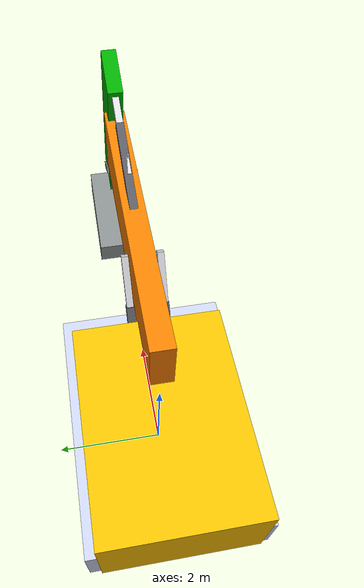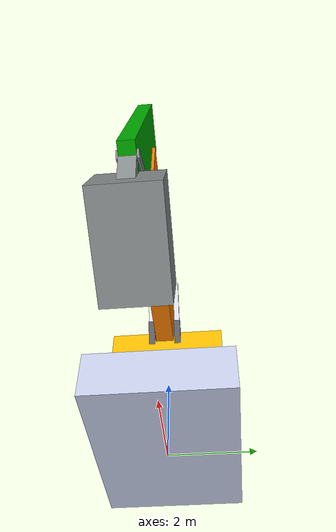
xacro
<?xml version="1.0" encoding="utf-8"?>
<robot name="excavator_box" xmlns:xacro="http://www.ros.org/wiki/xacro">

  <xacro:arg name="use_gazebo" default="false"/>
  <xacro:arg name="controllers_file" default=""/>

  <!-- Main-joint limits (same as the mesh model). -->
  <xacro:property name="swing_lower"  value="-6.2832"/>
  <xacro:property name="swing_upper"  value="6.2832"/>
  <xacro:property name="boom_lower"   value="-0.9"/>
  <xacro:property name="boom_upper"   value="0.35"/>
  <xacro:property name="stick_lower"  value="-0.8"/>
  <xacro:property name="stick_upper"  value="1.0"/>
  <xacro:property name="bucket_lower" value="-1.4"/>
  <xacro:property name="bucket_upper" value="1.2"/>

  <!-- Keep the same tool frame as the mesh model. -->
  <xacro:property name="bucket_tip_xyz" value="1.800 0 -0.060"/>

  <material name="excavator_yellow"><color rgba="1.0 0.75 0.0 1.0"/></material>
  <material name="excavator_orange"><color rgba="1.0 0.50 0.0 1.0"/></material>
  <material name="excavator_green"><color rgba="0.0 0.67 0.0 1.0"/></material>
  <material name="excavator_grey"><color rgba="0.53 0.55 0.55 1.0"/></material>
  <material name="excavator_blue"><color rgba="0.79 0.82 0.93 1.0"/></material>
  <material name="cylinder_body"><color rgba="0.35 0.35 0.38 1.0"/></material>
  <material name="cylinder_rod"><color rgba="0.85 0.85 0.88 1.0"/></material>

  <!-- A link with one Box visual and one Box collision. -->
  <xacro:macro name="box_link"
               params="name size xyz mass ixx iyy izz color com:='0 0 0'">
    <link name="${name}">
      <inertial>
        <origin xyz="${com}" rpy="0 0 0"/>
        <mass value="${mass}"/>
        <inertia ixx="${ixx}" ixy="0.0" ixz="0.0" iyy="${iyy}" iyz="0.0"
                 izz="${izz}"/>
      </inertial>
      <visual>
        <origin xyz="${xyz}" rpy="0 0 0"/>
        <geometry><box size="${size}"/></geometry>
        <material name="${color}"/>
      </visual>
      <collision>
        <origin xyz="${xyz}" rpy="0 0 0"/>
        <geometry><box size="${size}"/></geometry>
      </collision>
    </link>
  </xacro:macro>

  <!-- A decorative link (hydraulic cylinder, linkage, rocker): visual only. -->
  <xacro:macro name="box_visual_link"
               params="name size xyz mass ixx iyy izz color">
    <link name="${name}">
      <inertial>
        <origin xyz="0 0 0" rpy="0 0 0"/>
        <mass value="${mass}"/>
        <inertia ixx="${ixx}" ixy="0.0" ixz="0.0" iyy="${iyy}" iyz="0.0"
                 izz="${izz}"/>
      </inertial>
      <visual>
        <origin xyz="${xyz}" rpy="0 0 0"/>
        <geometry><box size="${size}"/></geometry>
        <material name="${color}"/>
      </visual>
    </link>
  </xacro:macro>

  <!-- Hydraulic cylinder: revolute body + prismatic rod. -->
  <xacro:macro name="box_hydraulic_cylinder"
               params="name parent body_xyz body_rpy body_size body_center
                       rod_xyz rod_size rod_center">
    <xacro:box_visual_link name="${name}_body"
      size="${body_size}" xyz="${body_center}" mass="1.0"
      ixx="0.02" iyy="0.02" izz="0.005" color="cylinder_body"/>
    <joint name="${name}_body_joint" type="revolute">
      <origin xyz="${body_xyz}" rpy="${body_rpy}"/>
      <parent link="${parent}"/>
      <child link="${name}_body"/>
      <axis xyz="0 1 0"/>
      <limit lower="-2.0" upper="2.0" effort="5000" velocity="4"/>
    </joint>

    <xacro:box_visual_link name="${name}_rod"
      size="${rod_size}" xyz="${rod_center}" mass="1.0"
      ixx="0.02" iyy="0.02" izz="0.005" color="cylinder_rod"/>
    <joint name="${name}_rod_joint" type="prismatic">
      <origin xyz="${rod_xyz}" rpy="0 0 0"/>
      <parent link="${name}_body"/>
      <child link="${name}_rod"/>
      <axis xyz="0 0 -1"/>
      <limit lower="-2.0" upper="2.0" effort="5000" velocity="4"/>
    </joint>
  </xacro:macro>

  <!-- ============================ links ============================ -->
  <link name="world"/>

  <!-- Bounding boxes of the original meshes. The centres match the mesh
       bounding-box centres, so the boxes occupy the same space. -->
  <xacro:box_link name="base_link"
    size="4.5963 3.3000 1.1166" xyz="-0.0010 0 0.1617"
    mass="10000" ixx="10833.3" iyy="10833.3" izz="20000.0"
    com="0 0 0.19446" color="excavator_blue"/>

  <joint name="world_to_base_link" type="fixed">
    <origin xyz="0 0 0.397" rpy="0 0 0"/>
    <parent link="world"/>
    <child link="base_link"/>
  </joint>

  <xacro:box_link name="swing_link"
    size="3.6042 2.6550 1.6468" xyz="-0.7170 0.0525 0.8234"
    mass="3000" ixx="2250" iyy="2250" izz="3375"
    color="excavator_yellow"/>

  <joint name="swing_joint" type="revolute">
    <origin xyz="0 0 0.72" rpy="0 0 0"/>
    <parent link="base_link"/>
    <child link="swing_link"/>
    <axis xyz="0 0 -1"/>
    <limit lower="${swing_lower}" upper="${swing_upper}" effort="5000"
           velocity="0.5"/>
    <dynamics damping="1.0" friction="40.0"/>
  </joint>

  <xacro:box_link name="boom_link"
    size="5.6803 0.4200 1.3741" xyz="2.6938 0 1.0406"
    mass="1440.8" ixx="321.25" iyy="3009.3" izz="2727.5"
    com="2.2911 0 1.2825" color="excavator_orange"/>

  <joint name="boom_joint" type="revolute">
    <origin xyz="-0.009 0 1.0372" rpy="0 0 0"/>
    <parent link="swing_link"/>
    <child link="boom_link"/>
    <axis xyz="0 1 0"/>
    <limit lower="${boom_lower}" upper="${boom_upper}" effort="5000"
           velocity="0.3"/>
    <dynamics damping="1.0" friction="80.0"/>
  </joint>

  <xacro:box_link name="stick_link"
    size="3.9877 0.3000 1.0195" xyz="1.0405 0 0.3506"
    mass="600.4" ixx="26.656" iyy="564.47" izz="545.68"
    com="0.9223 0 0.24134" color="excavator_green"/>

  <joint name="stick_joint" type="revolute">
    <origin xyz="5.4177 0 1.706" rpy="0 1.2726 0"/>
    <parent link="boom_link"/>
    <child link="stick_link"/>
    <axis xyz="0 1 0"/>
    <limit lower="${stick_lower}" upper="${stick_upper}" effort="5000"
           velocity="0.4"/>
    <dynamics damping="1.0" friction="80.0"/>
  </joint>

  <xacro:box_link name="bucket_link"
    size="1.9642 1.2000 1.1148" xyz="0.8179 0 0.4978"
    mass="359.5" ixx="94.627" iyy="138.37" izz="169.06"
    com="0.72017 0 0.569" color="excavator_grey"/>

  <joint name="bucket_joint" type="revolute">
    <origin xyz="2.9111 0 0.15097" rpy="0 1.4717 0"/>
    <parent link="stick_link"/>
    <child link="bucket_link"/>
    <axis xyz="0 1 0"/>
    <limit lower="${bucket_lower}" upper="${bucket_upper}" effort="5000"
           velocity="0.5"/>
    <dynamics damping="1.0" friction="80.0"/>
  </joint>

  <!-- Bucket linkage, visual only (same joint as the mesh model). -->
  <xacro:box_visual_link name="bucket_linkage"
    size="0.1679 0.3000 0.7960" xyz="0 0 -0.3140" mass="1.973"
    ixx="1.2029" iyy="1.0753" izz="0.1691" color="excavator_grey"/>
  <joint name="bucket_linkage_joint" type="revolute">
    <origin xyz="-0.10419 0 0.59088" rpy="0 0.53327 0"/>
    <parent link="bucket_link"/>
    <child link="bucket_linkage"/>
    <axis xyz="0 -1 0"/>
    <limit lower="-3.0" upper="3.0" effort="5000" velocity="1.0"/>
  </joint>

  <link name="bucket_tip"/>
  <joint name="bucket_tip_joint" type="fixed">
    <origin xyz="${bucket_tip_xyz}" rpy="0 0 0"/>
    <parent link="bucket_link"/>
    <child link="bucket_tip"/>
  </joint>

  <!-- ========================= hydraulic cylinders ================= -->
  <xacro:box_hydraulic_cylinder name="boom_cyl_l" parent="swing_link"
    body_xyz="0.461 0.31 0.44" body_rpy="0 0.55538 0"
    body_size="0.1500 0.1462 1.7031" body_center="0 0 0.7784"
    rod_xyz="0 0 0.95471"
    rod_size="0.1191 0.1200 1.6300" rod_center="0 0 0.8150"/>
  <xacro:box_hydraulic_cylinder name="boom_cyl_r" parent="swing_link"
    body_xyz="0.461 -0.31 0.44" body_rpy="0 0.5538 0"
    body_size="0.1500 0.1462 1.7031" body_center="0 0 0.7784"
    rod_xyz="0 0 0.95471"
    rod_size="0.1191 0.1200 1.6300" rod_center="0 0 0.8150"/>
  <xacro:box_hydraulic_cylinder name="stick_cyl" parent="boom_link"
    body_xyz="2.7108 0 1.6303" body_rpy="0 1.26 0"
    body_size="0.1600 0.1560 1.9580" body_center="0 0 0.9010"
    rod_xyz="0 0 0.7811"
    rod_size="0.1600 0.1300 1.9380" rod_center="0 0 0.9690"/>
  <xacro:box_hydraulic_cylinder name="bucket_cyl" parent="stick_link"
    body_xyz="0.40628 0 0.76931" body_rpy="-3.1416 1.4945 -3.1416"
    body_size="0.1500 0.1500 1.5350" body_center="0 0 0.6925"
    rod_xyz="0 0 1.0701"
    rod_size="0.1191 0.1200 1.5100" rod_center="0 0 0.7550"/>

  <!-- Stick rockers, visual only. -->
  <xacro:macro name="box_stick_rocker" params="name y">
    <xacro:box_visual_link name="${name}"
      size="0.1634 0.0400 0.7740" xyz="0 0 0.3050" mass="1.0"
      ixx="0.3" iyy="0.3" izz="0.05" color="excavator_grey"/>
    <joint name="${name}_joint" type="revolute">
      <origin xyz="2.4617 ${y} 0.17367" rpy="0 0.84777 0"/>
      <parent link="stick_link"/>
      <child link="${name}"/>
      <axis xyz="0 1 0"/>
      <limit lower="-3.0" upper="3.0" effort="5000" velocity="1.0"/>
    </joint>
  </xacro:macro>
  <xacro:box_stick_rocker name="stick_rocker_l" y="-0.17"/>
  <xacro:box_stick_rocker name="stick_rocker_r" y="0.17"/>

  <!-- ============================ Gazebo =========================== -->
  <gazebo reference="base_link">
    <mu1>0.9</mu1>
    <mu2>0.9</mu2>
  </gazebo>

  <xacro:if value="$(arg use_gazebo)">
    <gazebo>
      <plugin filename="libgazebo_ros2_control.so" name="gazebo_ros2_control">
        <parameters>$(arg controllers_file)</parameters>
      </plugin>
    </gazebo>
  </xacro:if>

  <!-- ======================= ros2_control ========================== -->
  <ros2_control name="ExcavatorSystem" type="system">
    <hardware>
      <plugin>gazebo_ros2_control/GazeboSystem</plugin>
    </hardware>
    <joint name="swing_joint">
      <command_interface name="position"/>
      <state_interface name="position"><param name="initial_value">0.0</param></state_interface>
      <state_interface name="velocity"/>
      <state_interface name="effort"/>
    </joint>
    <joint name="boom_joint">
      <command_interface name="position"/>
      <state_interface name="position"><param name="initial_value">-0.35</param></state_interface>
      <state_interface name="velocity"/>
      <state_interface name="effort"/>
    </joint>
    <joint name="stick_joint">
      <command_interface name="position"/>
      <state_interface name="position"><param name="initial_value">0.45</param></state_interface>
      <state_interface name="velocity"/>
      <state_interface name="effort"/>
    </joint>
    <joint name="bucket_joint">
      <command_interface name="position"/>
      <state_interface name="position"><param name="initial_value">-0.40</param></state_interface>
      <state_interface name="velocity"/>
      <state_interface name="effort"/>
    </joint>
    <joint name="boom_cyl_l_body_joint">
      <command_interface name="position"/>
      <state_interface name="position"><param name="initial_value">-0.30301</param></state_interface>
      <state_interface name="velocity"/>
    </joint>
    <joint name="boom_cyl_l_rod_joint">
      <command_interface name="position"/>
      <state_interface name="position"><param name="initial_value">-0.23228</param></state_interface>
      <state_interface name="velocity"/>
    </joint>
    <joint name="boom_cyl_r_body_joint">
      <command_interface name="position"/>
      <state_interface name="position"><param name="initial_value">-0.30301</param></state_interface>
      <state_interface name="velocity"/>
    </joint>
    <joint name="boom_cyl_r_rod_joint">
      <command_interface name="position"/>
      <state_interface name="position"><param name="initial_value">-0.23228</param></state_interface>
      <state_interface name="velocity"/>
    </joint>
    <joint name="stick_cyl_body_joint">
      <command_interface name="position"/>
      <state_interface name="position"><param name="initial_value">0.04501</param></state_interface>
      <state_interface name="velocity"/>
    </joint>
    <joint name="stick_cyl_rod_joint">
      <command_interface name="position"/>
      <state_interface name="position"><param name="initial_value">-0.36905</param></state_interface>
      <state_interface name="velocity"/>
    </joint>
    <joint name="bucket_cyl_body_joint">
      <command_interface name="position"/>
      <state_interface name="position"><param name="initial_value">-0.08259</param></state_interface>
      <state_interface name="velocity"/>
    </joint>
    <joint name="bucket_cyl_rod_joint">
      <command_interface name="position"/>
      <state_interface name="position"><param name="initial_value">0.11620</param></state_interface>
      <state_interface name="velocity"/>
    </joint>
    <joint name="stick_rocker_l_joint">
      <command_interface name="position"/>
      <state_interface name="position"><param name="initial_value">-0.40</param></state_interface>
      <state_interface name="velocity"/>
    </joint>
    <joint name="stick_rocker_r_joint">
      <command_interface name="position"/>
      <state_interface name="position"><param name="initial_value">-0.40</param></state_interface>
      <state_interface name="velocity"/>
    </joint>
    <joint name="bucket_linkage_joint">
      <command_interface name="position"/>
      <state_interface name="position"><param name="initial_value">-0.40</param></state_interface>
      <state_interface name="velocity"/>
    </joint>
  </ros2_control>

</robot>
